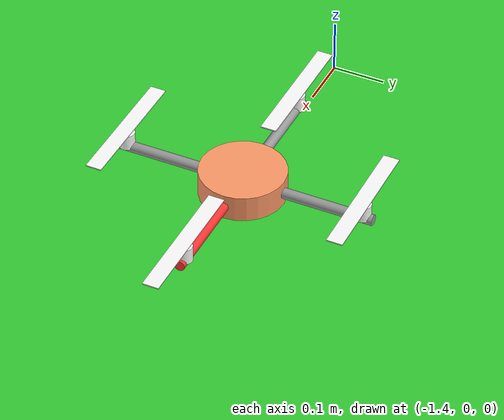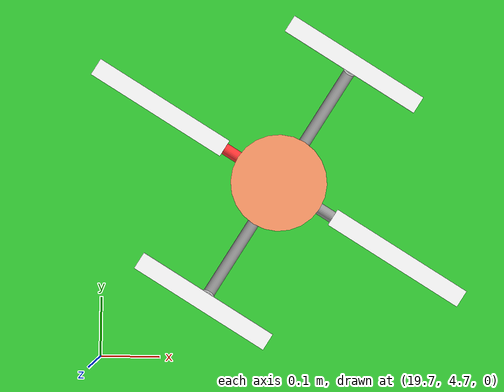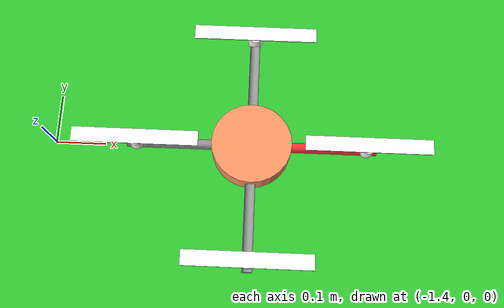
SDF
<?xml version="1.0"?>
<sdf version="1.5">
  <world name="mrsim">
    <physics name='1ms' type='unused'>
      <max_step_size>0.002000</max_step_size>
      <real_time_factor>1.000000</real_time_factor>
      <real_time_update_rate>500.000000</real_time_update_rate>
      <gravity>0 0 -9.81</gravity>
      <magnetic_field>23.816e-6 -0.41e-6 -39.829e-6</magnetic_field>
    </physics>

    <light type="directional" name="sun">
      <cast_shadows>true</cast_shadows>
      <pose>0 0 10 0 0 0</pose>
      <diffuse>0.8 0.8 0.8 1</diffuse>
      <specular>0.2 0.2 0.2 1</specular>
      <attenuation>
        <range>1000</range>
        <constant>0.9</constant>
        <linear>0.01</linear>
        <quadratic>0.001</quadratic>
      </attenuation>
      <direction>-0.5 0.1 -0.9</direction>
    </light>

    <model name="ground_plane">
      <static>true</static>
      <link name="link">
        <collision name="collision">
          <geometry>
            <plane>
              <normal>0 0 1.0</normal>
              <size>100 100</size>
            </plane>
          </geometry>
        </collision>
        <visual name="visual">
          <geometry>
            <plane>
              <normal>0 0 1.0</normal>
              <size>100 100</size>
            </plane>
          </geometry>
          <material>
            <ambient>0.2 0.8 0.2 1</ambient>
            <diffuse>0.2 0.8 0.2 1</diffuse>
            <specular>0.2 0.8 0.2 1</specular>
          </material>
        </visual>
      </link>
    </model>

    <include>
      <uri>file:///home/giuliano-livi/tk3lab-ws/gazebo/models/mrsim-quadrotor-leader</uri>
      <name>qr4_leading</name>
      <pose>-1 0 0.025 0 0 0</pose>
    </include>

    <include>
      <uri>file:///home/giuliano-livi/tk3lab-ws/gazebo/models/mrsim-quadrotor</uri>
      <name>qr4_following</name>
      <pose>20 5 0.025 0 0 2.589938</pose>
    </include>

    <plugin name="gz::sim::systems::Sensors" filename="gz-sim-sensors-system">
      <render_engine>ogre2</render_engine>
    </plugin>

    <plugin name="optitrack" filename="optitrack-gazebo.so">
      <hz>100</hz>
      <port>1509</port>
      <publish>
        <link>qr4_following::base</link>
        <name>QR4_following</name>
      </publish>
      <publish>
        <link>qr4_leading::base</link>
        <name>QR4_leading</name>
      </publish>
    </plugin>
  </world>
</sdf>

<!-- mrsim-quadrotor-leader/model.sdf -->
<sdf version="1.5">
  <model name="mrsim-quadrotor-leader">
    <link name="base">
      <inertial>
        <mass>1.0</mass>
        <inertia>
          <ixx>0.015</ixx><ixy>0</ixy><ixz>0</ixz>
          <iyy>0.015</iyy><iyz>0</iyz>
          <izz>0.007</izz>
        </inertia>
      </inertial>

      <collision name="base">
        <geometry>
          <cylinder><radius>0.1</radius><length>0.05</length></cylinder>
        </geometry>
      </collision>
      <!-- three spheres to make contact stable -->
      <collision name="land_1">
        <pose>0.1 0 0 0 0 0</pose>
        <geometry>
          <sphere><radius>0.03</radius></sphere>
        </geometry>
      </collision>
      <collision name="land_2">
        <pose>-0.05 0.086 0 0 0 0</pose>
        <geometry>
          <sphere><radius>0.03</radius></sphere>
        </geometry>
      </collision>
      <collision name="land_3">
        <pose>-0.05 -0.086 0 0 0 0</pose>
        <geometry>
          <sphere><radius>0.03</radius></sphere>
        </geometry>
      </collision>

      <visual name="body">
        <geometry>
          <cylinder><radius>0.08</radius><length>0.05</length></cylinder>
        </geometry>
        <material>
          <ambient>1.0 0.6 0.4 1</ambient>
          <diffuse>1.0 0.6 0.4 1</diffuse>
        </material>
      </visual>

      <visual name="arm-1">
        <pose>0.125 0 0 0 1.5708 0</pose>
        <geometry>
          <cylinder><radius>0.01</radius><length>0.25</length></cylinder>
        </geometry>
        <material>
          <ambient>1.0 0.2 0.2 1</ambient>
          <diffuse>1.0 0.2 0.2 1</diffuse>
        </material>
      </visual>
      <visual name="arm-2">
        <pose>0 0.125 0 0 1.5708 1.5708</pose>
        <geometry>
          <cylinder><radius>0.01</radius><length>0.25</length></cylinder>
        </geometry>
        <material>
          <ambient>0.6 0.6 0.6 1</ambient>
          <diffuse>0.6 0.6 0.6 1</diffuse>
        </material>
      </visual>
      <visual name="arm-3">
        <pose>-0.125 0 0 0 1.5708 0</pose>
        <geometry>
          <cylinder><radius>0.01</radius><length>0.25</length></cylinder>
        </geometry>
        <material>
          <ambient>0.6 0.6 0.6 1</ambient>
          <diffuse>0.6 0.6 0.6 1</diffuse>
        </material>
      </visual>
      <visual name="arm-4">
        <pose>0 -0.125 0 0 1.5708 1.5708</pose>
        <geometry>
          <cylinder><radius>0.01</radius><length>0.25</length></cylinder>
        </geometry>
        <material>
          <ambient>0.6 0.6 0.6 1</ambient>
          <diffuse>0.6 0.6 0.6 1</diffuse>
        </material>
      </visual>

    </link>

    <include>
      <uri>model://mrsim-rotor</uri>
      <name>rotor-1</name>
      <pose>0.23 0 0 0 0 0</pose>
    </include>
    <joint name="motor-1" type="revolute">
      <parent>base</parent>
      <child>rotor-1::propeller</child>
      <axis><xyz>0 0 1</xyz></axis>
    </joint>

    <include>
      <uri>model://mrsim-rotor</uri>
      <name>rotor-2</name>
      <pose>0 0.23 0 0 0 0</pose>
    </include>
    <joint name="motor-2" type="revolute">
      <parent>base</parent>
      <child>rotor-2::propeller</child>
      <axis><xyz>0 0 1</xyz></axis>
    </joint>

    <include>
      <uri>model://mrsim-rotor</uri>
      <name>rotor-3</name>
      <pose>-0.23 0 0 0 0 0</pose>
    </include>
    <joint name="motor-3" type="revolute">
      <parent>base</parent>
      <child>rotor-3::propeller</child>
      <axis><xyz>0 0 1</xyz></axis>
    </joint>

    <include>
      <uri>model://mrsim-rotor</uri>
      <name>rotor-4</name>
      <pose>0 -0.23 0 0 0 0</pose>
    </include>
    <joint name="motor-4" type="revolute">
      <parent>base</parent>
      <child>rotor-4::propeller</child>
      <axis><xyz>0 0 1</xyz></axis>
    </joint>

    <plugin name="mrsim" filename="mrsim-gazebo.so">
      <link>base</link>

      <rotors>
        <noise>0.03</noise>
        <cf>6.5e-4</cf>
        <ct>1e-5</ct>
        <vfxy>0.5</vfxy><vfz>0.5</vfz>
        <vtxy>0.5</vtxy><vtz>0.5</vtz>
        <rotor><joint spin="cw">motor-1</joint></rotor>
        <rotor><joint spin="ccw">motor-2</joint></rotor>
        <rotor><joint spin="cw">motor-3</joint></rotor>
        <rotor><joint spin="ccw">motor-4</joint></rotor>
      </rotors>

      <!-- optionnally specify an explicit allocation matrix -->
    </plugin>
</model>
</sdf>

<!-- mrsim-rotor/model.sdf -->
<sdf version="1.5">
  <model name="mrsim-rotor">
    <link name="propeller">
      <inertial>
        <mass>0.07</mass>
        <inertia>
          <ixx>4e-5</ixx><ixy>0</ixy><ixz>0</ixz>
          <iyy>4e-5</iyy><iyz>0</iyz>
          <izz>8e-5</izz>
        </inertia>
      </inertial>

      <collision name="collision">
        <pose>0 0 0.04 0 0 0</pose>
        <geometry>
          <cylinder><radius>0.127</radius><length>0.002</length></cylinder>
        </geometry>
      </collision>

      <visual name="motor">
        <pose>0 0 0.015 0 0 0</pose>
        <geometry>
          <cylinder><radius>0.015</radius><length>0.03</length></cylinder>
        </geometry>
        <material>
          <ambient>0.1 0.1 0.1 1</ambient>
          <diffuse>1.0 1.0 1.0 1</diffuse>
        </material>
      </visual>

      <visual name="axle">
        <pose>0 0 0.035 0 0 0</pose>
        <geometry>
          <cylinder><radius>0.002</radius><length>0.01</length></cylinder>
        </geometry>
        <material>
          <ambient>0.1 0.1 0.1 1</ambient>
          <diffuse>1.0 1.0 1.0 1</diffuse>
        </material>
      </visual>

      <visual name="blade">
        <pose>0 0 0.04 0 0 0</pose>
        <geometry>
          <box><size>0.25 0.03 0.002</size></box>
        </geometry>
        <material>
          <ambient>0.1 0.1 0.1 1</ambient>
          <diffuse>1.0 1.0 1.0 1</diffuse>
        </material>
      </visual>
    </link>
  </model>
</sdf>

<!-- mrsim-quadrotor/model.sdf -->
<sdf version="1.5">
  <model name="mrsim-quadrotor">
    <link name="base">
      <inertial>
        <mass>1.0</mass>
        <inertia>
          <ixx>0.015</ixx><ixy>0</ixy><ixz>0</ixz>
          <iyy>0.015</iyy><iyz>0</iyz>
          <izz>0.007</izz>
        </inertia>
      </inertial>

      <collision name="base">
        <geometry>
          <cylinder><radius>0.1</radius><length>0.05</length></cylinder>
        </geometry>
      </collision>
      <!-- three spheres to make contact stable -->
      <collision name="land_1">
        <pose>0.1 0 0 0 0 0</pose>
        <geometry>
          <sphere><radius>0.03</radius></sphere>
        </geometry>
      </collision>
      <collision name="land_2">
        <pose>-0.05 0.086 0 0 0 0</pose>
        <geometry>
          <sphere><radius>0.03</radius></sphere>
        </geometry>
      </collision>
      <collision name="land_3">
        <pose>-0.05 -0.086 0 0 0 0</pose>
        <geometry>
          <sphere><radius>0.03</radius></sphere>
        </geometry>
      </collision>

      <visual name="body">
        <geometry>
          <cylinder><radius>0.08</radius><length>0.05</length></cylinder>
        </geometry>
        <material>
          <ambient>1.0 0.6 0.4 1</ambient>
          <diffuse>1.0 0.6 0.4 1</diffuse>
        </material>
      </visual>

      <visual name="arm-1">
        <pose>0.125 0 0 0 1.5708 0</pose>
        <geometry>
          <cylinder><radius>0.01</radius><length>0.25</length></cylinder>
        </geometry>
        <material>
          <ambient>1.0 0.2 0.2 1</ambient>
          <diffuse>1.0 0.2 0.2 1</diffuse>
        </material>
      </visual>
      <visual name="arm-2">
        <pose>0 0.125 0 0 1.5708 1.5708</pose>
        <geometry>
          <cylinder><radius>0.01</radius><length>0.25</length></cylinder>
        </geometry>
        <material>
          <ambient>0.6 0.6 0.6 1</ambient>
          <diffuse>0.6 0.6 0.6 1</diffuse>
        </material>
      </visual>
      <visual name="arm-3">
        <pose>-0.125 0 0 0 1.5708 0</pose>
        <geometry>
          <cylinder><radius>0.01</radius><length>0.25</length></cylinder>
        </geometry>
        <material>
          <ambient>0.6 0.6 0.6 1</ambient>
          <diffuse>0.6 0.6 0.6 1</diffuse>
        </material>
      </visual>
      <visual name="arm-4">
        <pose>0 -0.125 0 0 1.5708 1.5708</pose>
        <geometry>
          <cylinder><radius>0.01</radius><length>0.25</length></cylinder>
        </geometry>
        <material>
          <ambient>0.6 0.6 0.6 1</ambient>
          <diffuse>0.6 0.6 0.6 1</diffuse>
        </material>
      </visual>

      <!-- TELECAMERA (FOV TOTALE 87°x58°, RANGE 10M) -->
      <sensor type="camera" name="camera">
        <!-- Pose: X Y Z Roll Pitch Yaw -> asse ottico ruotato di 45° attorno a z rispetto all'asse x del drone, da config.py -->
        <pose>0 0 -0.10 0 0 0.785398</pose>
        <camera>
          <!-- FOV orizzontale totale: 43.5° a sx + 43.5° a dx = 87° (1.518436 rad), da config.py -->
          <horizontal_fov>1.518436</horizontal_fov>
          <image>
            <width>640</width>
            <height>374</height>
          </image>
          <clip>
            <near>0.1</near>
            <far>10</far> <!-- Max range di 10 metri, da config.py -->
          </clip>
        </camera>
        <always_on>1</always_on>
        <update_rate>60</update_rate>
        <visualize>true</visualize>
      </sensor>
    </link>

    <include>
      <uri>model://mrsim-rotor</uri>
      <name>rotor-1</name>
      <pose>0.23 0 0 0 0 0</pose>
    </include>
    <joint name="motor-1" type="revolute">
      <parent>base</parent>
      <child>rotor-1::propeller</child>
      <axis><xyz>0 0 1</xyz></axis>
    </joint>

    <include>
      <uri>model://mrsim-rotor</uri>
      <name>rotor-2</name>
      <pose>0 0.23 0 0 0 0</pose>
    </include>
    <joint name="motor-2" type="revolute">
      <parent>base</parent>
      <child>rotor-2::propeller</child>
      <axis><xyz>0 0 1</xyz></axis>
    </joint>

    <include>
      <uri>model://mrsim-rotor</uri>
      <name>rotor-3</name>
      <pose>-0.23 0 0 0 0 0</pose>
    </include>
    <joint name="motor-3" type="revolute">
      <parent>base</parent>
      <child>rotor-3::propeller</child>
      <axis><xyz>0 0 1</xyz></axis>
    </joint>

    <include>
      <uri>model://mrsim-rotor</uri>
      <name>rotor-4</name>
      <pose>0 -0.23 0 0 0 0</pose>
    </include>
    <joint name="motor-4" type="revolute">
      <parent>base</parent>
      <child>rotor-4::propeller</child>
      <axis><xyz>0 0 1</xyz></axis>
    </joint>

    <plugin name="mrsim" filename="mrsim-gazebo.so">
      <link>base</link>

      <rotors>
        <noise>0.03</noise>
        <cf>6.5e-4</cf>
        <ct>1e-5</ct>
        <vfxy>0.5</vfxy><vfz>0.5</vfz>
        <vtxy>0.5</vtxy><vtz>0.5</vtz>
        <rotor><joint spin="cw">motor-1</joint></rotor>
        <rotor><joint spin="ccw">motor-2</joint></rotor>
        <rotor><joint spin="cw">motor-3</joint></rotor>
        <rotor><joint spin="ccw">motor-4</joint></rotor>
      </rotors>

      <!-- optionnally specify an explicit allocation matrix -->
    </plugin>
</model>
</sdf>
